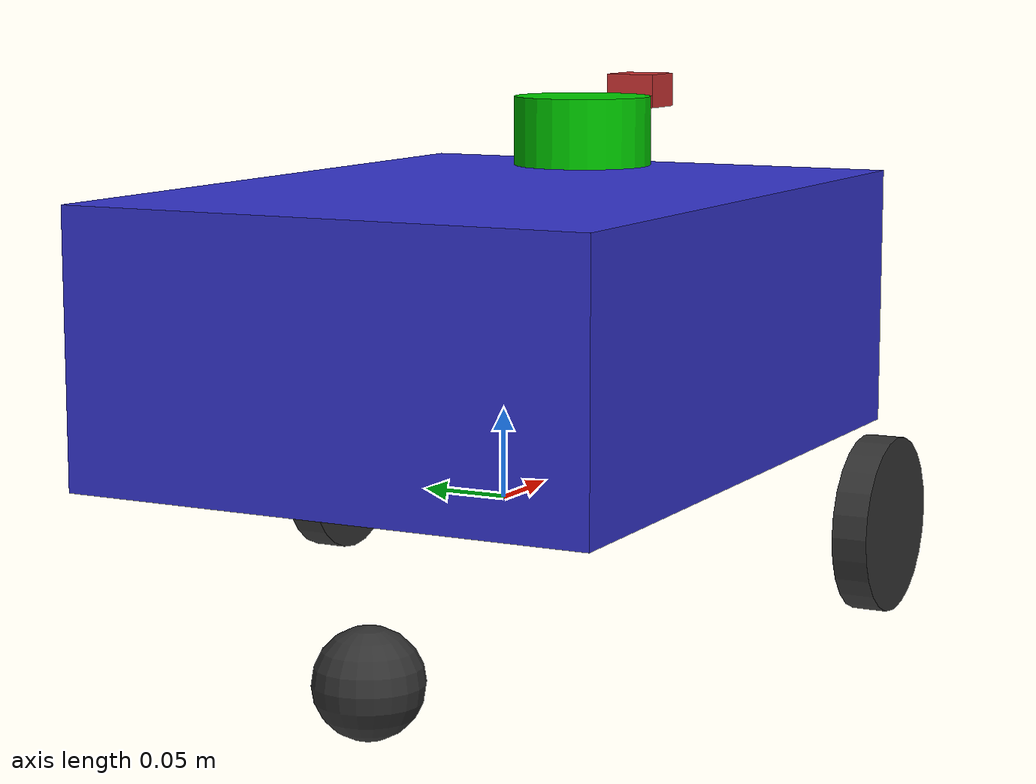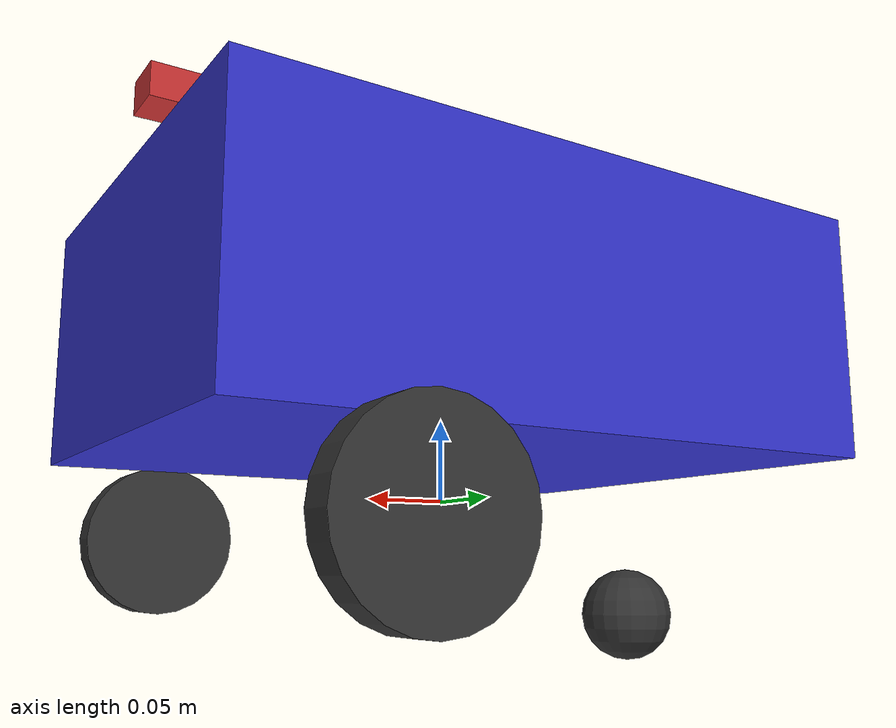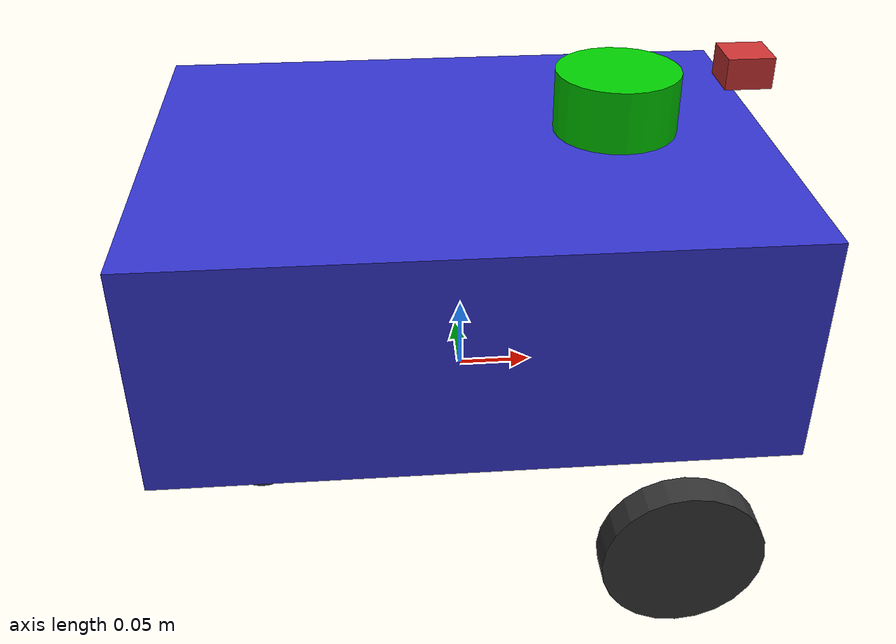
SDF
<?xml version="1.0"?>
<sdf version="1.6">
  <!--
    ====== 巡逻机器人模型 ======
    结构：底盘 + 两个驱动轮 + 万向轮 + 激光雷达
    驱动方式：差速驱动 (DiffDrive Plugin)
  -->
  <model name="patrol_bot">

    <!-- 底盘：0.4m长 × 0.3m宽 × 0.15m高 -->
    <link name="chassis">
      <pose>0 0 0.1 0 0 0</pose>
      <inertial>
        <mass>5.0</mass>
        <inertia>
          <ixx>0.1</ixx><ixy>0.0</ixy><ixz>0.0</ixz>
          <iyy>0.1</iyy><iyz>0.0</iyz>
          <izz>0.1</izz>
        </inertia>
      </inertial>
      <visual name="chassis_visual">
        <geometry>
          <box><size>0.4 0.3 0.15</size></box>
        </geometry>
        <material>
          <ambient>0.2 0.2 0.8 1</ambient>
          <diffuse>0.2 0.2 0.8 1</diffuse>
        </material>
      </visual>
      <collision name="chassis_collision">
        <geometry>
          <box><size>0.4 0.3 0.15</size></box>
        </geometry>
      </collision>
    </link>

    <!-- 左驱动轮 -->
    <link name="left_wheel">
      <pose>0.12 0.18 -0.02 1.5708 0 0</pose>
      <inertial>
        <mass>0.5</mass>
        <inertia>
          <ixx>0.001</ixx><iyy>0.001</iyy><izz>0.001</izz>
        </inertia>
      </inertial>
      <visual name="left_wheel_visual">
        <geometry>
          <cylinder><radius>0.05</radius><length>0.02</length></cylinder>
        </geometry>
        <material>
          <ambient>0.2 0.2 0.2 1</ambient>
        </material>
      </visual>
      <collision name="left_wheel_collision">
        <geometry>
          <cylinder><radius>0.05</radius><length>0.02</length></cylinder>
        </geometry>
      </collision>
    </link>

    <!-- 右驱动轮 -->
    <link name="right_wheel">
      <pose>0.12 -0.18 -0.02 1.5708 0 0</pose>
      <inertial>
        <mass>0.5</mass>
        <inertia>
          <ixx>0.001</ixx><iyy>0.001</iyy><izz>0.001</izz>
        </inertia>
      </inertial>
      <visual name="right_wheel_visual">
        <geometry>
          <cylinder><radius>0.05</radius><length>0.02</length></cylinder>
        </geometry>
        <material>
          <ambient>0.2 0.2 0.2 1</ambient>
        </material>
      </visual>
      <collision name="right_wheel_collision">
        <geometry>
          <cylinder><radius>0.05</radius><length>0.02</length></cylinder>
        </geometry>
      </collision>
    </link>

    <!-- 万向轮（后方支撑） -->
    <link name="caster">
      <pose>-0.15 0 -0.07 0 0 0</pose>
      <inertial>
        <mass>0.1</mass>
        <inertia>
          <ixx>0.0001</ixx><iyy>0.0001</iyy><izz>0.0001</izz>
        </inertia>
      </inertial>
      <visual name="caster_visual">
        <geometry>
          <sphere><radius>0.03</radius></sphere>
        </geometry>
        <material>
          <ambient>0.2 0.2 0.2 1</ambient>
        </material>
      </visual>
      <collision name="caster_collision">
        <geometry>
          <sphere><radius>0.03</radius></sphere>
        </geometry>
      </collision>
    </link>

    <!-- 左轮关节 -->
    <joint name="left_wheel_joint" type="revolute">
      <parent>chassis</parent>
      <child>left_wheel</child>
      <axis><xyz>0 0 1</xyz></axis>
    </joint>

    <!-- 右轮关节 -->
    <joint name="right_wheel_joint" type="revolute">
      <parent>chassis</parent>
      <child>right_wheel</child>
      <axis><xyz>0 0 1</xyz></axis>
    </joint>

    <!-- 万向轮关节 -->
    <joint name="caster_joint" type="ball">
      <parent>chassis</parent>
      <child>caster</child>
    </joint>

    <!-- ====== 差速驱动插件 ====== -->
    <plugin
      filename="ignition-gazebo-diff-drive-system"
      name="gz::sim::systems::DiffDrive">
      <left_joint>left_wheel_joint</left_joint>
      <right_joint>right_wheel_joint</right_joint>
      <wheel_separation>0.36</wheel_separation>
      <wheel_radius>0.05</wheel_radius>
      <odom_publish_frequency>30</odom_publish_frequency>
      <topic>/model/patrol_bot/cmd_vel</topic>
      <odom_topic>/model/patrol_bot/odometry</odom_topic>
      <tf_topic>/model/patrol_bot/tf</tf_topic>
      <max_linear_velocity>0.5</max_linear_velocity>
      <min_linear_velocity>-0.5</min_linear_velocity>
      <max_angular_velocity>1.5</max_angular_velocity>
      <min_angular_velocity>-1.5</min_angular_velocity>
    </plugin>

    <!-- ====== 激光雷达传感器 ====== -->
    <!-- 发布 2D 点云到 /scan_points，后续用 pointcloud_to_laserscan 转 LaserScan -->
    <link name="lidar_link">
      <pose>0.1 0 0.2 0 0 0</pose>
      <inertial>
        <mass>0.01</mass>
        <inertia>
          <ixx>0.00001</ixx><iyy>0.00001</iyy><izz>0.00001</izz>
        </inertia>
      </inertial>
      <visual name="lidar_visual">
        <geometry>
          <cylinder><radius>0.04</radius><length>0.04</length></cylinder>
        </geometry>
        <material>
          <ambient>0.0 0.8 0.0 1</ambient>
        </material>
      </visual>
      <sensor name="lidar" type="gpu_lidar">
        <topic>scan</topic>
        <update_rate>10</update_rate>
        <lidar>
          <scan>
            <horizontal>
              <samples>360</samples>
              <resolution>1</resolution>
              <min_angle>-3.14159</min_angle>
              <max_angle>3.14159</max_angle>
            </horizontal>
          </scan>
          <range>
            <min>0.1</min>
            <max>12.0</max>
            <resolution>0.02</resolution>
          </range>
        </lidar>
        <always_on>1</always_on>
        <visualize>true</visualize>
      </sensor>
    </link>

    <!-- LiDAR 刚性连接到底盘 -->
    <joint name="lidar_joint" type="fixed">
      <parent>chassis</parent>
      <child>lidar_link</child>
    </joint>

    <!-- ====== 虚拟相机（RGB 视觉，为 M5 视觉分段预留） ====== -->
    <link name="camera_link">
      <pose>0.18 0 0.22 0 0 0</pose>
      <inertial>
        <mass>0.01</mass>
        <inertia>
          <ixx>0.00001</ixx><iyy>0.00001</iyy><izz>0.00001</izz>
        </inertia>
      </inertial>
      <visual name="camera_visual">
        <geometry>
          <box><size>0.03 0.03 0.02</size></box>
        </geometry>
        <material>
          <ambient>0.8 0.2 0.2 1</ambient>
        </material>
      </visual>
      <sensor name="camera" type="camera">
        <topic>camera/image_raw</topic>
        <update_rate>10</update_rate>
        <camera>
          <horizontal_fov>1.047</horizontal_fov>
          <image>
            <width>640</width>
            <height>480</height>
          </image>
          <clip>
            <near>0.1</near>
            <far>100</far>
          </clip>
        </camera>
        <always_on>1</always_on>
        <visualize>true</visualize>
      </sensor>
    </link>

    <joint name="camera_joint" type="fixed">
      <parent>chassis</parent>
      <child>camera_link</child>
    </joint>

  </model>
</sdf>
